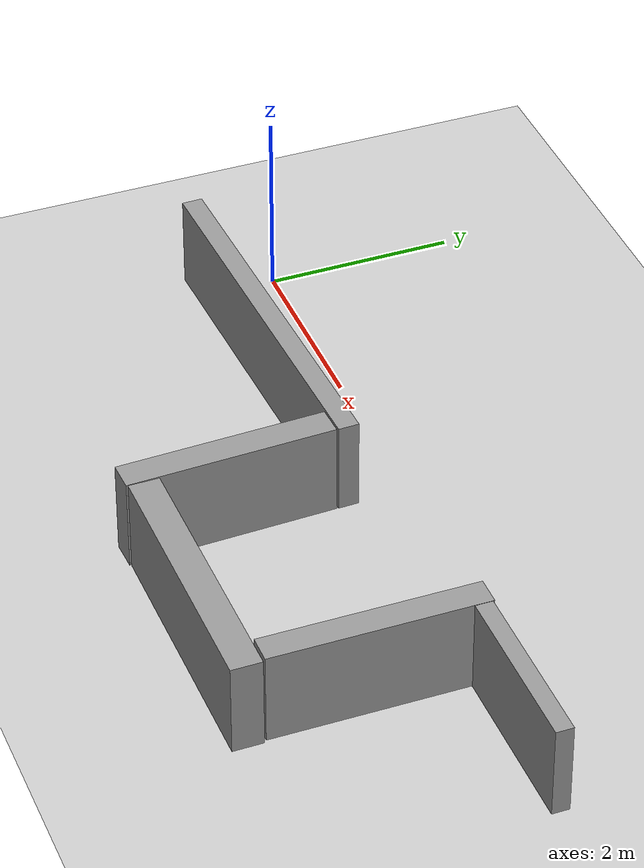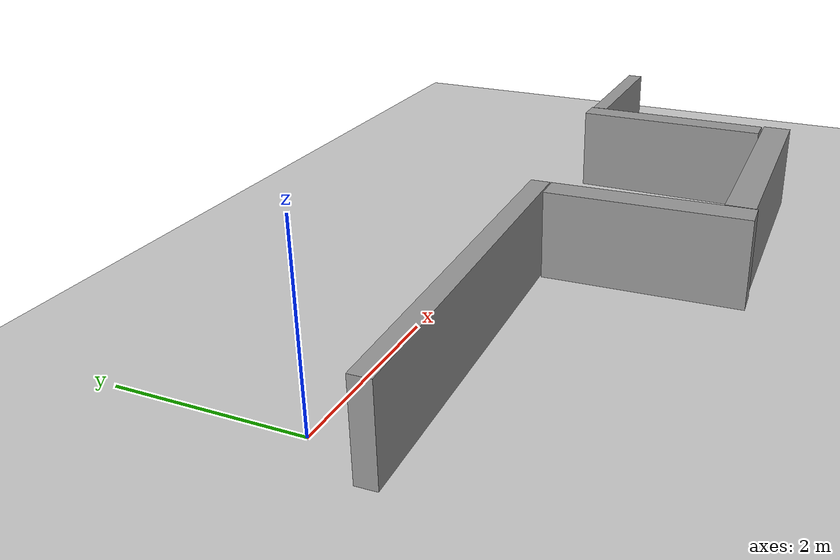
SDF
<sdf version="1.7">
 <world name="default">
  <light name="sun" type="directional">
   <pose>0 0 10 0 -0 0</pose>
   <diffuse>0.8 0.8 0.8 1</diffuse>
   <specular>0.2 0.2 0.2 1</specular>
   <attenuation>
    <range>1000</range>
    <constant>0.9</constant>
    <linear>0.01</linear>
    <quadratic>0.001</quadratic>
   </attenuation>
   <direction>-0.5 0.1 -0.9</direction>
   <spot><inner_angle>0</inner_angle><outer_angle>0</outer_angle><falloff>0</falloff></spot>
  </light>
  <model name="ground_plane">
   <static>1</static>
   <link name="link">
    <collision name="collision">
     <geometry><plane><normal>0 0 1</normal><size>100 100</size></plane></geometry>
     <surface><friction><ode><mu>100</mu><mu2>50</mu2></ode></friction></surface>
    </collision>
    <visual name="visual">
     <cast_shadows>0</cast_shadows>
     <geometry><plane><normal>0 0 1</normal><size>100 100</size></plane></geometry>
     <material>
      <script><uri>file://media/materials/scripts/gazebo.material</uri><name>Gazebo/Grey</name></script>
     </material>
    </visual>
   </link>
  </model>
  <gravity>0 0 -9.8</gravity>
  <magnetic_field>6e-06 2.3e-05 -4.2e-05</magnetic_field>
  <atmosphere type="adiabatic"/>
  <physics type="ode">
   <max_step_size>0.001</max_step_size>
   <real_time_factor>1</real_time_factor>
   <real_time_update_rate>1000</real_time_update_rate>
  </physics>
  <scene><ambient>0.4 0.4 0.4 1</ambient><background>0.7 0.7 0.7 1</background><shadows>1</shadows></scene>
  <audio><device>default</device></audio>
  <spherical_coordinates>
   <surface_model>EARTH_WGS84</surface_model>
   <latitude_deg>0</latitude_deg>
   <longitude_deg>0</longitude_deg>
   <elevation>0</elevation>
   <heading_deg>0</heading_deg>
  </spherical_coordinates>
  <model name="unit_box">
   <pose>1.71687 -0.691585 0.499071 1.6e-05 0.000445 0.033757</pose>
   <link name="link">
    <inertial>
     <mass>1</mass>
     <inertia>
      <ixx>0.166667</ixx>
      <ixy>0</ixy>
      <ixz>0</ixz>
      <iyy>0.166667</iyy>
      <iyz>0</iyz>
      <izz>0.166667</izz>
     </inertia>
    </inertial>
    <collision name="collision"><geometry><box><size>4.1926 0.21768 1</size></box></geometry></collision>
    <visual name="visual">
     <geometry><box><size>4.1926 0.21768 1</size></box></geometry>
     <material>
      <script><name>Gazebo/Grey</name><uri>file://media/materials/scripts/gazebo.material</uri></script>
     </material>
    </visual>
   </link>
  </model>
  <model name="unit_box_0">
   <pose>3.69785 -1.84823 0.499973 -2.5e-05 1e-06 0.035302</pose>
   <link name="link">
    <inertial>
     <mass>1</mass>
     <inertia>
      <ixx>0.166667</ixx>
      <ixy>0</ixy>
      <ixz>0</ixz>
      <iyy>0.166667</iyy>
      <iyz>0</iyz>
      <izz>0.166667</izz>
     </inertia>
    </inertial>
    <collision name="collision"><geometry><box><size>0.307926 2.19215 1</size></box></geometry></collision>
    <visual name="visual">
     <geometry><box><size>0.307926 2.19215 1</size></box></geometry>
     <material>
      <script><name>Gazebo/Grey</name><uri>file://media/materials/scripts/gazebo.material</uri></script>
     </material>
    </visual>
   </link>
  </model>
  <model name="unit_box_1">
   <pose>5.30497 -2.75379 0.499876 2e-06 -8.8e-05 0.005134</pose>
   <link name="link">
    <inertial>
     <mass>1</mass>
     <inertia>
      <ixx>0.166667</ixx>
      <ixy>0</ixy>
      <ixz>0</ixz>
      <iyy>0.166667</iyy>
      <iyz>0</iyz>
      <izz>0.166667</izz>
     </inertia>
    </inertial>
    <collision name="collision"><geometry><box><size>2.81699 0.321323 1</size></box></geometry></collision>
    <visual name="visual">
     <geometry><box><size>2.81699 0.321323 1</size></box></geometry>
     <material>
      <script><name>Gazebo/Grey</name><uri>file://media/materials/scripts/gazebo.material</uri></script>
     </material>
    </visual>
   </link>
  </model>
  <model name="unit_box_2">
   <pose>6.5437 -1.43539 0.499968 -2.9e-05 1e-06 -0.003406</pose>
   <link name="link">
    <inertial>
     <mass>1</mass>
     <inertia>
      <ixx>0.166667</ixx>
      <ixy>0</ixy>
      <ixz>0</ixz>
      <iyy>0.166667</iyy>
      <iyz>0</iyz>
      <izz>0.166667</izz>
     </inertia>
    </inertial>
    <collision name="collision"><geometry><box><size>0.290098 2.25019 1</size></box></geometry></collision>
    <visual name="visual">
     <geometry><box><size>0.290098 2.25019 1</size></box></geometry>
     <material>
      <script><name>Gazebo/Grey</name><uri>file://media/materials/scripts/gazebo.material</uri></script>
     </material>
    </visual>
   </link>
  </model>
  <model name="unit_box_3">
   <pose>7.6055 -0.42062 0.499994 -1e-06 7e-06 -0.000186</pose>
   <link name="link">
    <inertial>
     <mass>1</mass>
     <inertia>
      <ixx>0.166667</ixx>
      <ixy>0</ixy>
      <ixz>0</ixz>
      <iyy>0.166667</iyy>
      <iyz>0</iyz>
      <izz>0.166667</izz>
     </inertia>
    </inertial>
    <collision name="collision"><geometry><box><size>1.81708 0.182913 1</size></box></geometry></collision>
    <visual name="visual">
     <geometry><box><size>1.81708 0.182913 1</size></box></geometry>
     <material>
      <script><name>Gazebo/Grey</name><uri>file://media/materials/scripts/gazebo.material</uri></script>
     </material>
    </visual>
   </link>
  </model>
 </world>
</sdf>
